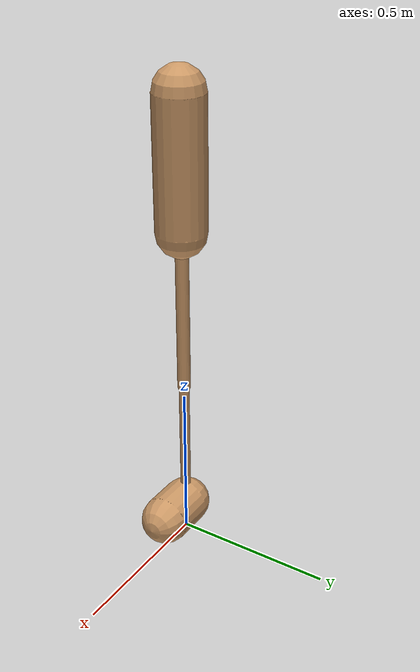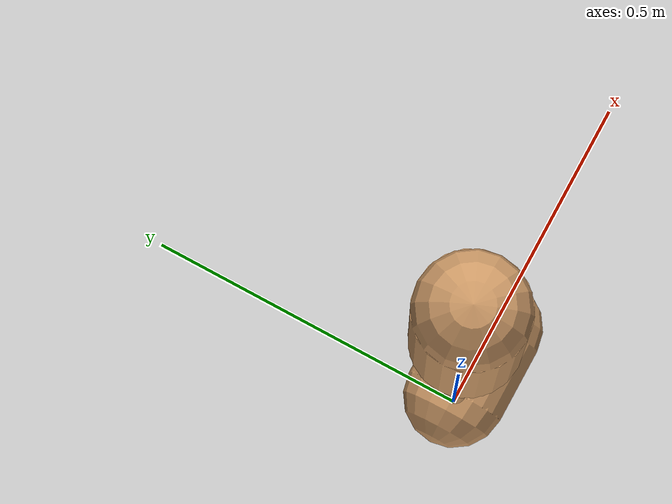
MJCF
<mujoco model="walker2d">
  <compiler angle="degree" coordinate="global" inertiafromgeom="true" />
  <default>
    <joint armature="0.01" damping=".1" limited="true" />
    <geom conaffinity="0" condim="3" contype="1" density="1000" friction="0.8 .1 .1" rgba="0.8 0.6 .4 1" />
  </default>
  <option integrator="RK4" timestep="0.002" />
  <worldbody>

    <body name="torso" pos="0 0 0.12758158431895109">
      <joint armature="0" axis="1 0 0" damping="0" limited="false" name="ignorex" pos="0 0 0" stiffness="0" type="slide" />
      <joint armature="0" axis="0 0 1" damping="0" limited="false" name="ignorez" pos="0 0 0" ref="1.25" stiffness="0" type="slide" />
      <joint armature="0" axis="0 1 0" damping="0" limited="false" name="ignorey" pos="0 0 0" stiffness="0" type="hinge" />
      <geom fromto="0 0 1.45 0 0 1.05" name="torso_geom" size="0.07663510726910322" type="capsule" />
      <body name="thigh">
        <joint axis="0 -1 0" name="thigh_joint" pos="0 0 1.05" range="-150 0" type="hinge" />
        <geom fromto="0.0 0.0 1.05 0.0 0.0 0.539566617954181" name="thigh_geom" size="0.020406543763678876" type="capsule" />
        <body name="leg" pos="0.0 0.0 -0.06043338204581894">
          <joint axis="0 -1 0" name="leg_joint" pos="0 0 0.6" range="-150 0" type="hinge" />
          <geom fromto="0.0 0.0 0.6 0.0 0.0 0.03285179772686786" name="leg_geom" size="0.0163252350109431" type="capsule" />
          <body name="foot" pos="0.0 0.0 -0.06714820227313215">
            <joint axis="0 -1 0" name="foot_joint" pos="0 0 0.1" range="-45 45" type="hinge" />
            <geom fromto="0.0 0.0 0.1 0.11728709711929818 0.0 0.1" name="foot_geom" size="0.07673178956682239" type="capsule" />
          </body>
        </body>
      </body>

      <body name="thigh_left">
        <joint axis="0 -1 0" name="thigh_left_joint" pos="0 0 1.05" range="-150 0" type="hinge" />
        <geom fromto="0.0 0.0 1.05 0.0 0.0 0.539566617954181" name="thigh_left_geom" rgba=".7 .3 .6 1" size="0.020406543763678876" type="capsule" />
        <body name="leg_left" pos="0.0 0.0 -0.06043338204581894">
          <joint axis="0 -1 0" name="leg_left_joint" pos="0 0 0.6" range="-150 0" type="hinge" />
          <geom fromto="0.0 0.0 0.6 0.0 0.0 0.03285179772686786" name="leg_left_geom" rgba=".7 .3 .6 1" size="0.0163252350109431" type="capsule" />
          <body name="foot_left" pos="0.0 0.0 -0.06714820227313215">
            <joint axis="0 -1 0" name="foot_left_joint" pos="0 0 0.1" range="-45 45" type="hinge" />
            <geom fromto="0.0 0.0 0.1 0.11728709711929818 0.0 0.1" name="foot_left_geom" rgba=".7 .3 .6 1" size="0.07673178956682239" type="capsule" />
          </body>
        </body>
      </body>
    </body>
  </worldbody>
  <actuator>

    <motor ctrllimited="true" ctrlrange="-1.0 1.0" gear="100" joint="thigh_joint" />
    <motor ctrllimited="true" ctrlrange="-1.0 1.0" gear="100" joint="leg_joint" />
    <motor ctrllimited="true" ctrlrange="-1.0 1.0" gear="100" joint="foot_joint" />
    <motor ctrllimited="true" ctrlrange="-1.0 1.0" gear="100" joint="thigh_left_joint" />
    <motor ctrllimited="true" ctrlrange="-1.0 1.0" gear="100" joint="leg_left_joint" />
    <motor ctrllimited="true" ctrlrange="-1.0 1.0" gear="100" joint="foot_left_joint" />

  </actuator>
</mujoco>
